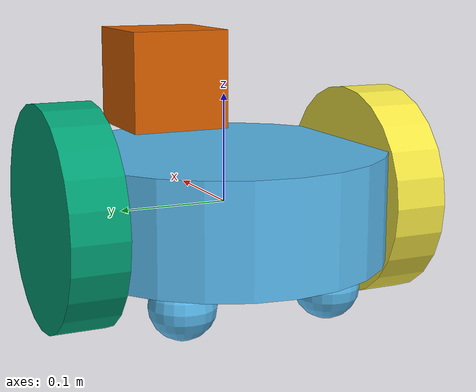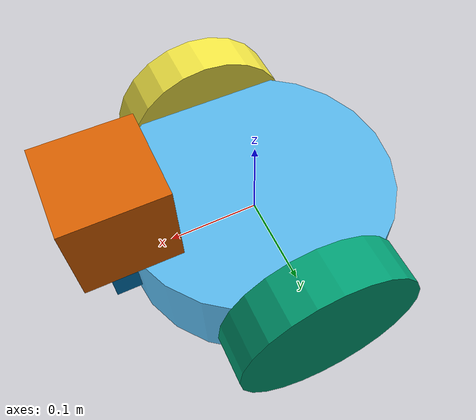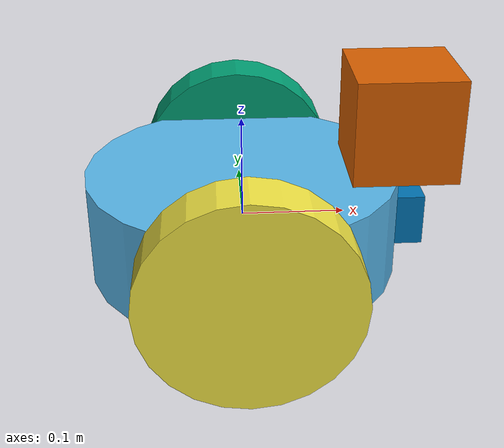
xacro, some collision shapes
<?xml version='1.0'?>

<robot name="udacity_bot" xmlns:xacro="http://www.ros.org/wiki/xacro">

  <xacro:include filename="$(find udacity_bot)/urdf/udacity_bot.gazebo" />

  <link name="robot_footprint"></link>

  <joint name="robot_footprint_joint" type="fixed">
    <origin xyz="0 0 0" rpy="0 0 0" />
    <parent link="robot_footprint"/>
    <child link="chassis" />
  </joint>

  <link name='chassis'>
    <pose>0 0 0.1 0 0 0</pose>

    <inertial>
      <mass value="15.0"/>
      <origin xyz="0.0 0 0" rpy=" 0 0 0"/>
      <inertia
          ixx="0.1" ixy="0" ixz="0"
          iyy="0.1" iyz="0"
          izz="0.1"
      />
    </inertial>

    <collision name='collision'>
      <origin xyz="0 0 0" rpy=" 0 0 0"/>
      <geometry>
        <cylinder length="0.1" radius="0.15"/>
      </geometry>
    </collision>

    <visual name='chassis_visual'>
      <origin xyz="0 0 0" rpy=" 0 0 0"/>
      <geometry>
        <cylinder length="0.1" radius="0.15"/>
      </geometry>
    </visual>

    <collision name='back_caster_collision'>
      <origin xyz="-0.07 -0.07 -0.07" rpy=" 0 0 0"/>
      <geometry>
        <sphere radius="0.0299"/>
      </geometry>
    </collision>

    <visual name='back_caster_visual'>
      <origin xyz="-0.07 -0.07 -0.07" rpy=" 0 0 0"/>
      <geometry>
        <sphere radius="0.03"/>
      </geometry>
    </visual>

    <collision name='front_caster_collision'>
      <origin xyz="0.07 -0.07 -0.07" rpy=" 0 0 0"/>
      <geometry>
        <sphere radius="0.0299"/>
      </geometry>
    </collision>

    <visual name='front_caster_visual'>
      <origin xyz="0.07 -0.07 -0.07" rpy=" 0 0 0"/>
      <geometry>
        <sphere radius="0.03"/>
      </geometry>
    </visual>

    <collision name='right_caster_collision'>
      <origin xyz="-0.07 0.07 -0.07" rpy=" 0 0 0"/>
      <geometry>
        <sphere radius="0.0299"/>
      </geometry>
    </collision>

    <visual name='right_caster_visual'>
      <origin xyz="-0.07 0.07 -0.07" rpy=" 0 0 0"/>
      <geometry>
        <sphere radius="0.03"/>
      </geometry>
    </visual>

    <collision name='left_caster_collision'>
      <origin xyz="0.07 0.07 -0.07" rpy=" 0 0 0"/>a
      <geometry>
        <sphere radius="0.0299"/>
      </geometry>
    </collision>

    <visual name='left_caster_visual'>
      <origin xyz="0.07 0.07 -0.07" rpy=" 0 0 0"/>
      <geometry>
        <sphere radius="0.03"/>
      </geometry>
    </visual>

  </link>

  <link name='left_wheel'>
    <inertial>
      <mass value="5.0"/>
      <origin xyz="0.0 0 0" rpy=" 0 1.5707 1.5707"/>
      <inertia
          ixx="0.1" ixy="0" ixz="0"
          iyy="0.1" iyz="0"
          izz="0.1"
      />
    </inertial>

    <visual>
      <geometry>
        <cylinder length="0.05" radius="0.1"/>
      </geometry>
      <origin xyz="0 0 0" rpy="0 1.5707 1.5707"/>
    </visual>

    <collision>
      <geometry>
        <cylinder length="0.05" radius="0.1"/>
      </geometry>
      <origin xyz="0 0 0" rpy="0 1.5707 1.5707"/>
    </collision>
  </link>

  <link name='right_wheel'>
    <inertial>
      <mass value="5.0"/>
      <origin xyz="0.0 0 0" rpy=" 0 1.5707 1.5707"/>
      <inertia
          ixx="0.1" ixy="0" ixz="0"
          iyy="0.1" iyz="0"
          izz="0.1"
      />
    </inertial>

    <visual>
      <geometry>
        <cylinder length="0.05" radius="0.1"/>
      </geometry>
      <origin xyz="0 0 0" rpy="0 1.5707 1.5707"/>
    </visual>

    <collision>
      <geometry>
        <cylinder length="0.05" radius="0.1"/>
      </geometry>
      <origin xyz="0 0 0" rpy="0 1.5707 1.5707"/>
    </collision>
  </link>

  <joint type="continuous" name="left_wheel_hinge">
    <origin xyz="0 0.15 0" rpy="0 0 0"/>
    <child link="left_wheel"/>
    <parent link="chassis"/>
    <axis xyz="0 1 0" rpy="0 0 0"/>
    <limit effort="10000" velocity="1000"/>
    <dynamics damping="1.0" friction="1.0"/>
  </joint>

  <joint type="continuous" name="right_wheel_hinge">
    <origin xyz="0 -0.15 0" rpy="0 0 0"/>
    <child link="right_wheel"/>
    <parent link="chassis"/>
    <axis xyz="0 1 0" rpy="0 0 0"/>
    <limit effort="10000" velocity="1000"/>
    <dynamics damping="1.0" friction="1.0"/>
  </joint>

  <link name="camera">
    <inertial>
      <mass value="0.1"/>
      <origin xyz="0 0 0" rpy="0 0 0"/>
      <inertia
          ixx="1e-6" ixy="0" ixz="0"
          iyy="1e-6" iyz="0"
          izz="1e-6"
      />
    </inertial>
    <visual>
      <geometry>
        <box size="0.05 0.05 0.05"/>
      </geometry>
      <origin xyz="0 0 0" rpy="0 0 0"/>
    </visual>
    <collision>
      <geometry>
        <box size="0.05 0.05 0.05"/>
      </geometry>
      <origin xyz="0 0 0" rpy="0 0 0"/>
    </collision>
  </link>

  <joint type="fixed" name="camera_joint">
    <origin xyz="0.15 0 0" rpy="0 0 0"/>
    <child link="camera"/>
    <parent link="chassis"/>
  </joint>

    <link name="hokuyo">
    <inertial>
      <mass value="0.1"/>
      <origin xyz="0 0 0" rpy="0 0 0"/>
      <inertia
          ixx="1e-6" ixy="0" ixz="0"
          iyy="1e-6" iyz="0"
          izz="1e-6"
      />
    </inertial>

    <visual>
      <geometry>
        <mesh filename="package://udacity_bot/meshes/hokuyo.dae"/>
      </geometry>
      <origin xyz="0 0 0" rpy="0 0 0"/>
    </visual>

    <collision>
      <geometry>
        <box size="0.1 0.1 0.1"/>
      </geometry>
      <origin xyz="0 0 0" rpy="0 0 0"/>
    </collision>
  </link>

  <joint type="fixed" name="hokuyo_joint">
    <origin xyz="0.15 0 0.1" rpy="0 0 0"/>
    <child link="hokuyo"/>
    <parent link="chassis"/>
  </joint>

</robot>
